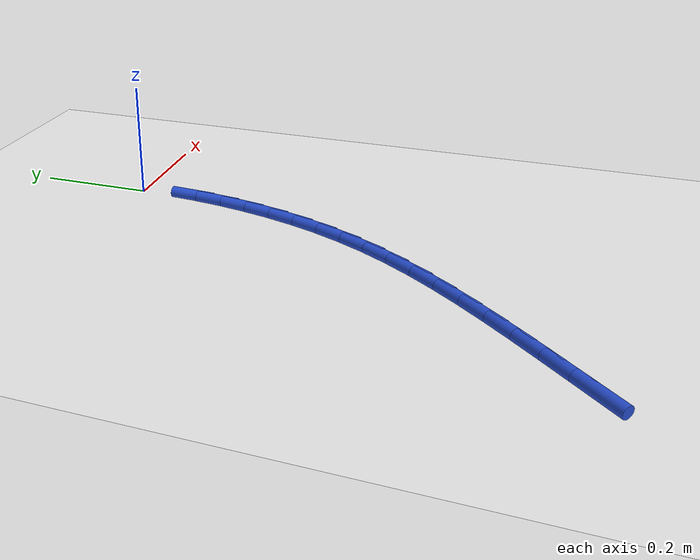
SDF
<sdf version="1.6">
 <world name="default">
  <model name="ground_plane">
   <static>1</static>
   <link name="link">
    <collision name="collision">
     <geometry><plane><normal>0 0 1</normal><size>100 100</size></plane></geometry>
     <surface><friction><ode><mu>100</mu><mu2>50</mu2></ode></friction></surface>
    </collision>
    <visual name="visual">
     <cast_shadows>0</cast_shadows>
     <geometry><plane><normal>0 0 1</normal><size>100 100</size></plane></geometry>
     <material>
      <script><uri>file://media/materials/scripts/gazebo.material</uri><name>Gazebo/WhiteGlow</name></script>
     </material>
    </visual>
   </link>
  </model>
  <model name="line">
   <link name="link_122">
    <pose>-0.38120063490441136 -0.7867952164813966 0.01 0 1.57 0.8131084103904422</pose>
    <collision name="collision">
     <geometry><cylinder><radius>0.01</radius><length>0.08</length></cylinder></geometry>
    </collision>
    <visual name="visual">
     <material>
      <script><name>Gazebo/Blue</name><uri>file://media/materials/scripts/gazebo.material</uri></script>
     </material>
     <geometry><cylinder><radius>0.01</radius><length>0.08</length></cylinder></geometry>
    </visual>
   </link>
   <link name="link_123">
    <pose>-0.34655443718402335 -0.7501736662398595 0.01 0 1.57 0.816210983159568</pose>
    <collision name="collision">
     <geometry><cylinder><radius>0.01</radius><length>0.08</length></cylinder></geometry>
    </collision>
    <visual name="visual">
     <material>
      <script><name>Gazebo/Blue</name><uri>file://media/materials/scripts/gazebo.material</uri></script>
     </material>
     <geometry><cylinder><radius>0.01</radius><length>0.08</length></cylinder></geometry>
    </visual>
   </link>
   <link name="link_124">
    <pose>-0.3119739201217059 -0.7133936332719094 0.01 0 1.57 0.8266359961482861</pose>
    <collision name="collision">
     <geometry><cylinder><radius>0.01</radius><length>0.08</length></cylinder></geometry>
    </collision>
    <visual name="visual">
     <material>
      <script><name>Gazebo/Blue</name><uri>file://media/materials/scripts/gazebo.material</uri></script>
     </material>
     <geometry><cylinder><radius>0.01</radius><length>0.08</length></cylinder></geometry>
    </visual>
   </link>
   <link name="link_125">
    <pose>-0.2778023169396371 -0.6762807446747555 0.01 0 1.57 0.844466674491612</pose>
    <collision name="collision">
     <geometry><cylinder><radius>0.01</radius><length>0.08</length></cylinder></geometry>
    </collision>
    <visual name="visual">
     <material>
      <script><name>Gazebo/Blue</name><uri>file://media/materials/scripts/gazebo.material</uri></script>
     </material>
     <geometry><cylinder><radius>0.01</radius><length>0.08</length></cylinder></geometry>
    </visual>
   </link>
   <link name="link_126">
    <pose>-0.24438310974513427 -0.6386604529259352 0.01 0 1.57 0.8698532867992714</pose>
    <collision name="collision">
     <geometry><cylinder><radius>0.01</radius><length>0.08</length></cylinder></geometry>
    </collision>
    <visual name="visual">
     <material>
      <script><name>Gazebo/Blue</name><uri>file://media/materials/scripts/gazebo.material</uri></script>
     </material>
     <geometry><cylinder><radius>0.01</radius><length>0.08</length></cylinder></geometry>
    </visual>
   </link>
   <link name="link_127">
    <pose>-0.21205978064551637 -0.6003582105029888 0.01 0 1.57 0.9029920500425808</pose>
    <collision name="collision">
     <geometry><cylinder><radius>0.01</radius><length>0.08</length></cylinder></geometry>
    </collision>
    <visual name="visual">
     <material>
      <script><name>Gazebo/Blue</name><uri>file://media/materials/scripts/gazebo.material</uri></script>
     </material>
     <geometry><cylinder><radius>0.01</radius><length>0.08</length></cylinder></geometry>
    </visual>
   </link>
   <link name="link_128">
    <pose>-0.18117581174810082 -0.5611994698834547 0.01 0 1.57 0.9440831684885366</pose>
    <collision name="collision">
     <geometry><cylinder><radius>0.01</radius><length>0.08</length></cylinder></geometry>
    </collision>
    <visual name="visual">
     <material>
      <script><name>Gazebo/Blue</name><uri>file://media/materials/scripts/gazebo.material</uri></script>
     </material>
     <geometry><cylinder><radius>0.01</radius><length>0.08</length></cylinder></geometry>
    </visual>
   </link>
   <link name="link_129">
    <pose>-0.1520746851602055 -0.5210096835448713 0.01 0 1.57 0.9932704772615613</pose>
    <collision name="collision">
     <geometry><cylinder><radius>0.01</radius><length>0.08</length></cylinder></geometry>
    </collision>
    <visual name="visual">
     <material>
      <script><name>Gazebo/Blue</name><uri>file://media/materials/scripts/gazebo.material</uri></script>
     </material>
     <geometry><cylinder><radius>0.01</radius><length>0.08</length></cylinder></geometry>
    </visual>
   </link>
   <link name="link_130">
    <pose>-0.12509988298914837 -0.47961430396477767 0.01 0 1.57 1.0505610454116774</pose>
    <collision name="collision">
     <geometry><cylinder><radius>0.01</radius><length>0.08</length></cylinder></geometry>
    </collision>
    <visual name="visual">
     <material>
      <script><name>Gazebo/Blue</name><uri>file://media/materials/scripts/gazebo.material</uri></script>
     </material>
     <geometry><cylinder><radius>0.01</radius><length>0.08</length></cylinder></geometry>
    </visual>
   </link>
   <link name="link_131">
    <pose>-0.1005948873422469 -0.4368387836207119 0.01 0 1.57 1.1143423091304567</pose>
    <collision name="collision">
     <geometry><cylinder><radius>0.01</radius><length>0.08</length></cylinder></geometry>
    </collision>
    <visual name="visual">
     <material>
      <script><name>Gazebo/Blue</name><uri>file://media/materials/scripts/gazebo.material</uri></script>
     </material>
     <geometry><cylinder><radius>0.01</radius><length>0.08</length></cylinder></geometry>
    </visual>
   </link>
   <link name="link_132">
    <pose>-0.07884877251985684 -0.39255295938063073 0.01 0 1.57 1.1775013243372419</pose>
    <collision name="collision">
     <geometry><cylinder><radius>0.01</radius><length>0.08</length></cylinder></geometry>
    </collision>
    <visual name="visual">
     <material>
      <script><name>Gazebo/Blue</name><uri>file://media/materials/scripts/gazebo.material</uri></script>
     </material>
     <geometry><cylinder><radius>0.01</radius><length>0.08</length></cylinder></geometry>
    </visual>
   </link>
   <link name="link_133">
    <pose>-0.059883737913791465 -0.34684437731258855 0.01 0 1.57 1.2378917956975648</pose>
    <collision name="collision">
     <geometry><cylinder><radius>0.01</radius><length>0.08</length></cylinder></geometry>
    </collision>
    <visual name="visual">
     <material>
      <script><name>Gazebo/Blue</name><uri>file://media/materials/scripts/gazebo.material</uri></script>
     </material>
     <geometry><cylinder><radius>0.01</radius><length>0.08</length></cylinder></geometry>
    </visual>
   </link>
   <link name="link_134">
    <pose>-0.04364028865736805 -0.2998672274106926 0.01 0 1.57 1.295557002042725</pose>
    <collision name="collision">
     <geometry><cylinder><radius>0.01</radius><length>0.08</length></cylinder></geometry>
    </collision>
    <visual name="visual">
     <material>
      <script><name>Gazebo/Blue</name><uri>file://media/materials/scripts/gazebo.material</uri></script>
     </material>
     <geometry><cylinder><radius>0.01</radius><length>0.08</length></cylinder></geometry>
    </visual>
   </link>
   <link name="link_135">
    <pose>-0.03005890893877733 -0.2517757167555068 0.01 0 1.57 1.350603707531445</pose>
    <collision name="collision">
     <geometry><cylinder><radius>0.01</radius><length>0.08</length></cylinder></geometry>
    </collision>
    <visual name="visual">
     <material>
      <script><name>Gazebo/Blue</name><uri>file://media/materials/scripts/gazebo.material</uri></script>
     </material>
     <geometry><cylinder><radius>0.01</radius><length>0.08</length></cylinder></geometry>
    </visual>
   </link>
   <link name="link_136">
    <pose>-0.019080082946210605 -0.20272405242759708 0.01 0 1.57 1.4031861354884367</pose>
    <collision name="collision">
     <geometry><cylinder><radius>0.01</radius><length>0.08</length></cylinder></geometry>
    </collision>
    <visual name="visual">
     <material>
      <script><name>Gazebo/Blue</name><uri>file://media/materials/scripts/gazebo.material</uri></script>
     </material>
     <geometry><cylinder><radius>0.01</radius><length>0.08</length></cylinder></geometry>
    </visual>
   </link>
   <link name="link_137">
    <pose>-0.01064429486785859 -0.15286644150752707 0.01 0 1.57 1.4534925123362985</pose>
    <collision name="collision">
     <geometry><cylinder><radius>0.01</radius><length>0.08</length></cylinder></geometry>
    </collision>
    <visual name="visual">
     <material>
      <script><name>Gazebo/Blue</name><uri>file://media/materials/scripts/gazebo.material</uri></script>
     </material>
     <geometry><cylinder><radius>0.01</radius><length>0.08</length></cylinder></geometry>
    </visual>
   </link>
   <link name="link_138">
    <pose>-0.004692028891912206 -0.10235709107586143 0.01 0 1.57 1.5017341090592762</pose>
    <collision name="collision">
     <geometry><cylinder><radius>0.01</radius><length>0.08</length></cylinder></geometry>
    </collision>
    <visual name="visual">
     <material>
      <script><name>Gazebo/Blue</name><uri>file://media/materials/scripts/gazebo.material</uri></script>
     </material>
     <geometry><cylinder><radius>0.01</radius><length>0.08</length></cylinder></geometry>
    </visual>
   </link>
  </model>
 </world>
</sdf>
